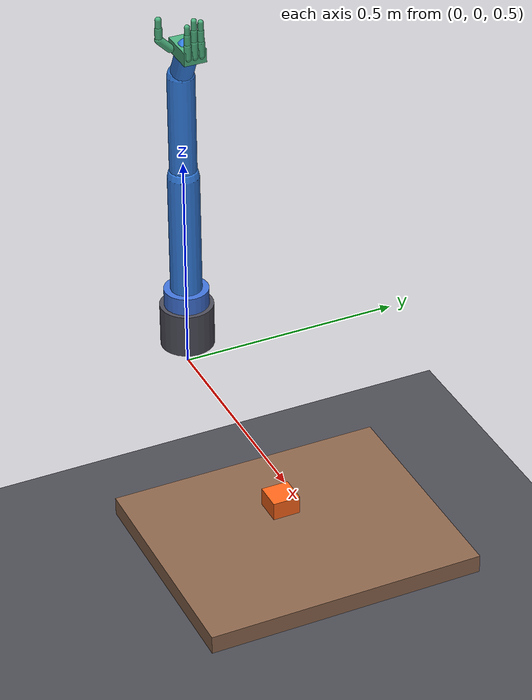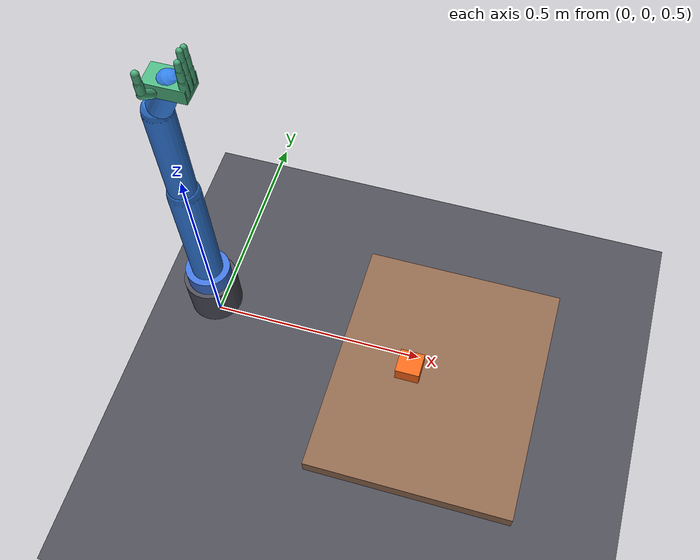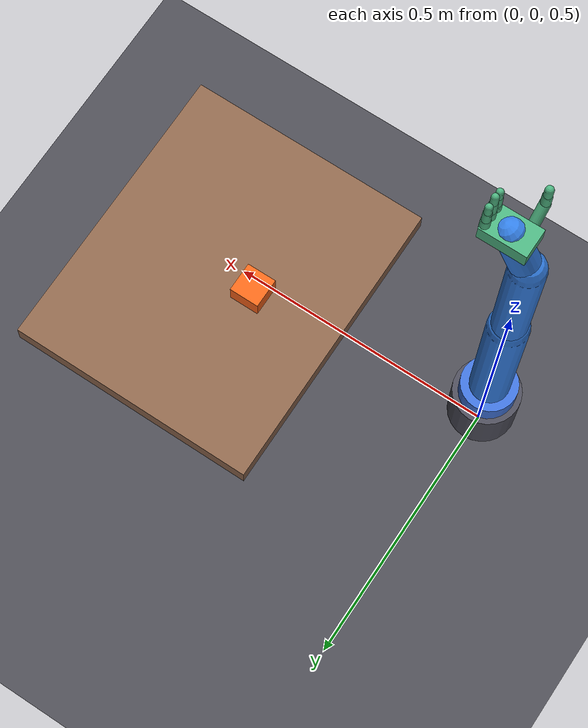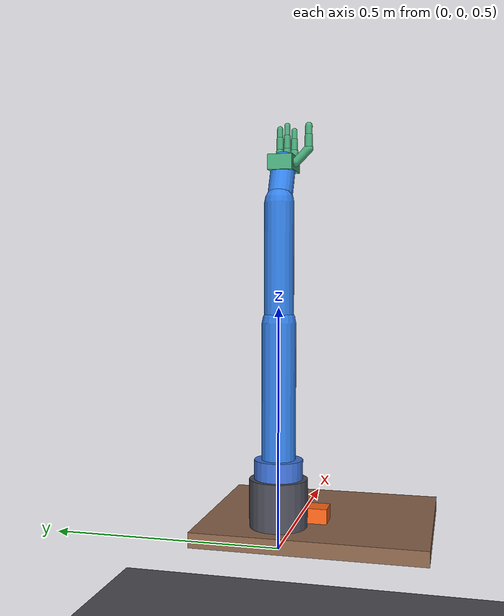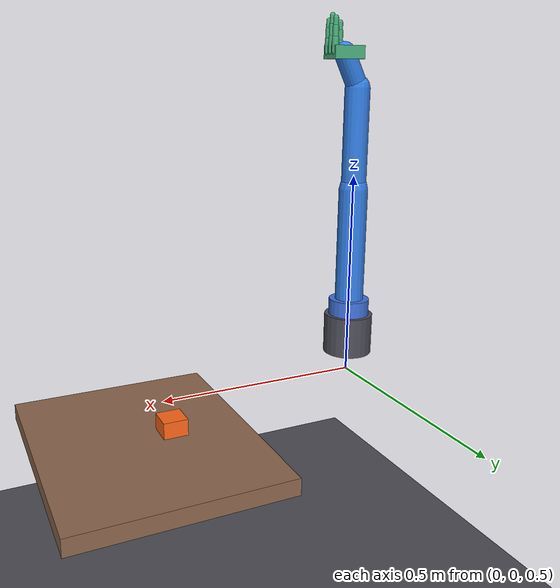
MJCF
<mujoco model="dexcrowd_arm_v2">
  <option timestep="0.002" gravity="0 0 -9.81" integrator="RK4"/>

  <visual>
    <headlight diffuse="0.8 0.8 0.8" ambient="0.3 0.3 0.3" specular="0.1 0.1 0.1"/>
    <rgba haze="0.15 0.25 0.35 1"/>
    <global azimuth="130" elevation="-20"/>
  </visual>

  <asset>
    <texture name="grid" type="2d" builtin="checker" rgb1="0.25 0.25 0.28" rgb2="0.35 0.35 0.38"
             width="512" height="512"/>
    <material name="grid_mat" texture="grid" texrepeat="4 4" reflectance="0.1"/>
    <material name="arm_mat"  rgba="0.2 0.5 0.9 1"/>
    <material name="hand_mat" rgba="0.3 0.7 0.5 1"/>
    <material name="target_mat" rgba="1.0 0.4 0.1 1"/>
    <material name="table_mat" rgba="0.55 0.40 0.30 1"/>
  </asset>

  <worldbody>
    <!-- Ground plane -->
    <geom type="plane" size="3 3 0.1" material="grid_mat"/>

    <!-- Table -->
    <body name="table" pos="0.55 0 0.4">
      <geom type="box" size="0.25 0.3 0.02" material="table_mat"/>
    </body>

    <!-- Target object (cube to pick) -->
    <body name="target_cube" pos="0.48 0.0 0.43">
      <geom type="box" size="0.03 0.03 0.03" material="target_mat" mass="0.05"/>
    </body>

    <!-- Robot arm base -->
    <body name="base" pos="0 0 0.6">
      <geom type="cylinder" size="0.06 0.05" rgba="0.3 0.3 0.35 1"/>

      <!-- Shoulder pan -->
      <body name="shoulder" pos="0 0 0.05">
        <joint name="shoulder_pan" type="hinge" axis="0 0 1" range="-2.0 2.0" damping="2.0"/>
        <geom type="cylinder" size="0.05 0.04" rgba="0.25 0.45 0.85 1"/>

        <!-- Upper arm -->
        <body name="upper_arm" pos="0 0 0.04">
          <joint name="shoulder_lift" type="hinge" axis="0 1 0" range="-1.6 0.8" damping="2.0"/>
          <geom type="capsule" size="0.035" fromto="0 0 0 0 0 0.28" material="arm_mat"/>

          <!-- Elbow -->
          <body name="forearm" pos="0 0 0.28">
            <joint name="elbow" type="hinge" axis="0 1 0" range="0.0 2.2" damping="1.5"/>
            <geom type="capsule" size="0.03" fromto="0 0 0 0 0 0.24" material="arm_mat"/>

            <!-- Wrist -->
            <body name="wrist" pos="0 0 0.24">
              <joint name="wrist_roll" type="hinge" axis="0 0 1" range="-1.8 1.8" damping="0.8"/>
              <geom type="capsule" size="0.025" fromto="0 0 0 0.04 0 0.08" material="arm_mat"/>

              <!-- Palm -->
              <body name="palm" pos="0.04 0 0.08">
                <geom type="box" size="0.04 0.025 0.015" material="hand_mat"/>

                <!-- Index finger -->
                <body name="index_base" pos="0.035 0.015 0">
                  <joint name="index_j0" type="hinge" axis="0 1 0" range="-0.1 1.5" damping="0.3"/>
                  <geom type="capsule" size="0.008" fromto="0 0 0 0 0 0.03" material="hand_mat"/>
                  <body name="index_mid" pos="0 0 0.03">
                    <joint name="index_j1" type="hinge" axis="0 1 0" range="-0.1 1.5" damping="0.2"/>
                    <geom type="capsule" size="0.007" fromto="0 0 0 0 0 0.025" material="hand_mat"/>
                    <body name="index_tip" pos="0 0 0.025">
                      <joint name="index_j2" type="hinge" axis="0 1 0" range="-0.1 1.3" damping="0.15"/>
                      <geom type="capsule" size="0.006" fromto="0 0 0 0 0 0.02" material="hand_mat"/>
                    </body>
                  </body>
                </body>

                <!-- Middle finger -->
                <body name="middle_base" pos="0.035 0 0">
                  <joint name="middle_j0" type="hinge" axis="0 1 0" range="-0.1 1.5" damping="0.3"/>
                  <geom type="capsule" size="0.008" fromto="0 0 0 0 0 0.032" material="hand_mat"/>
                  <body name="middle_mid" pos="0 0 0.032">
                    <joint name="middle_j1" type="hinge" axis="0 1 0" range="-0.1 1.5" damping="0.2"/>
                    <geom type="capsule" size="0.007" fromto="0 0 0 0 0 0.027" material="hand_mat"/>
                    <body name="middle_tip" pos="0 0 0.027">
                      <joint name="middle_j2" type="hinge" axis="0 1 0" range="-0.1 1.3" damping="0.15"/>
                      <geom type="capsule" size="0.006" fromto="0 0 0 0 0 0.022" material="hand_mat"/>
                    </body>
                  </body>
                </body>

                <!-- Ring finger -->
                <body name="ring_base" pos="0.035 -0.015 0">
                  <joint name="ring_j0" type="hinge" axis="0 1 0" range="-0.1 1.5" damping="0.3"/>
                  <geom type="capsule" size="0.008" fromto="0 0 0 0 0 0.028" material="hand_mat"/>
                  <body name="ring_mid" pos="0 0 0.028">
                    <joint name="ring_j1" type="hinge" axis="0 1 0" range="-0.1 1.5" damping="0.2"/>
                    <geom type="capsule" size="0.007" fromto="0 0 0 0 0 0.023" material="hand_mat"/>
                    <body name="ring_tip" pos="0 0 0.023">
                      <joint name="ring_j2" type="hinge" axis="0 1 0" range="-0.1 1.3" damping="0.15"/>
                      <geom type="capsule" size="0.006" fromto="0 0 0 0 0 0.019" material="hand_mat"/>
                    </body>
                  </body>
                </body>

                <!-- Thumb -->
                <body name="thumb_base" pos="-0.02 -0.03 0">
                  <joint name="thumb_j0" type="hinge" axis="1 0 0" range="-0.5 1.2" damping="0.3"/>
                  <geom type="capsule" size="0.009" fromto="0 0 0 0 -0.025 0.025" material="hand_mat"/>
                  <body name="thumb_mid" pos="0 -0.025 0.025">
                    <joint name="thumb_j1" type="hinge" axis="0 1 0" range="-0.1 1.4" damping="0.2"/>
                    <geom type="capsule" size="0.008" fromto="0 0 0 0 0 0.025" material="hand_mat"/>
                    <body name="thumb_tip" pos="0 0 0.025">
                      <joint name="thumb_j2" type="hinge" axis="0 1 0" range="-0.1 1.2" damping="0.15"/>
                      <geom type="capsule" size="0.007" fromto="0 0 0 0 0 0.02" material="hand_mat"/>
                    </body>
                  </body>
                </body>

              </body><!-- palm -->
            </body><!-- wrist -->
          </body><!-- forearm -->
        </body><!-- upper_arm -->
      </body><!-- shoulder -->
    </body><!-- base -->
  </worldbody>

  <actuator>
    <!-- Arm joints  tuned for visible motion without instability -->
    <position name="act_shoulder_pan"  joint="shoulder_pan"  kp="100" kv="20" ctrlrange="-2.0 2.0"/>
    <position name="act_shoulder_lift" joint="shoulder_lift" kp="100" kv="20" ctrlrange="-1.6 0.8"/>
    <position name="act_elbow"         joint="elbow"         kp="80"  kv="16" ctrlrange="0.0 2.2"/>
    <position name="act_wrist_roll"    joint="wrist_roll"    kp="50"  kv="10" ctrlrange="-1.8 1.8"/>
    <!-- Hand joints -->
    <position name="act_index_j0"   joint="index_j0"   kp="40" kv="4"  ctrlrange="-0.1 1.5"/>
    <position name="act_index_j1"   joint="index_j1"   kp="30" kv="3"  ctrlrange="-0.1 1.5"/>
    <position name="act_index_j2"   joint="index_j2"   kp="20" kv="2"  ctrlrange="-0.1 1.3"/>
    <position name="act_middle_j0"  joint="middle_j0"  kp="40" kv="4"  ctrlrange="-0.1 1.5"/>
    <position name="act_middle_j1"  joint="middle_j1"  kp="30" kv="3"  ctrlrange="-0.1 1.5"/>
    <position name="act_middle_j2"  joint="middle_j2"  kp="20" kv="2"  ctrlrange="-0.1 1.3"/>
    <position name="act_ring_j0"    joint="ring_j0"    kp="35" kv="3.5" ctrlrange="-0.1 1.5"/>
    <position name="act_ring_j1"    joint="ring_j1"    kp="25" kv="2.5" ctrlrange="-0.1 1.5"/>
    <position name="act_ring_j2"    joint="ring_j2"    kp="18" kv="1.8" ctrlrange="-0.1 1.3"/>
    <position name="act_thumb_j0"   joint="thumb_j0"   kp="40" kv="4"  ctrlrange="-0.5 1.2"/>
    <position name="act_thumb_j1"   joint="thumb_j1"   kp="30" kv="3"  ctrlrange="-0.1 1.4"/>
    <position name="act_thumb_j2"   joint="thumb_j2"   kp="20" kv="2"  ctrlrange="-0.1 1.2"/>
  </actuator>

  <sensor>
    <framepos name="palm_pos" objtype="body" objname="palm"/>
  </sensor>
</mujoco>
